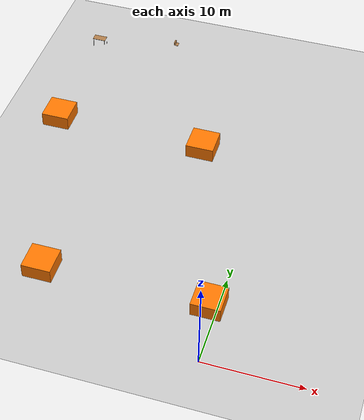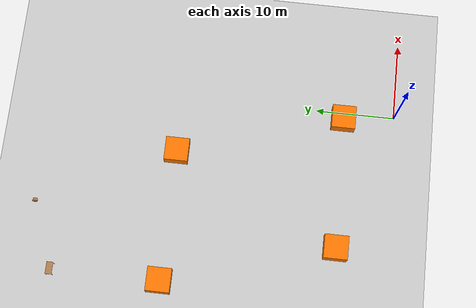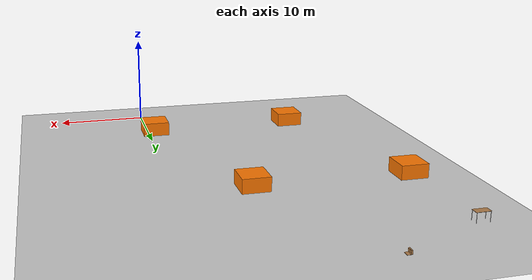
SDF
<sdf version="1.7">
 <world name="default">
  <light name="sun" type="directional">
   <pose>0 0 10 0 -0 0</pose>
   <diffuse>0.8 0.8 0.8 1</diffuse>
   <specular>0.2 0.2 0.2 1</specular>
   <attenuation>
    <range>1000</range>
    <constant>0.9</constant>
    <linear>0.01</linear>
    <quadratic>0.001</quadratic>
   </attenuation>
   <direction>-0.5 0.1 -0.9</direction>
   <spot><inner_angle>0</inner_angle><outer_angle>0</outer_angle><falloff>0</falloff></spot>
  </light>
  <model name="ground_plane">
   <static>1</static>
   <link name="link">
    <collision name="collision">
     <geometry><plane><normal>0 0 1</normal><size>100 100</size></plane></geometry>
     <surface><friction><ode><mu>100</mu><mu2>50</mu2></ode></friction></surface>
    </collision>
    <visual name="visual">
     <cast_shadows>0</cast_shadows>
     <geometry><plane><normal>0 0 1</normal><size>100 100</size></plane></geometry>
     <material>
      <script><uri>file://media/materials/scripts/gazebo.material</uri><name>Gazebo/Grey</name></script>
     </material>
    </visual>
   </link>
  </model>
  <gravity>0 0 -9.8</gravity>
  <magnetic_field>6e-06 2.3e-05 -4.2e-05</magnetic_field>
  <atmosphere type="adiabatic"/>
  <physics type="ode">
   <max_step_size>0.001</max_step_size>
   <real_time_factor>1</real_time_factor>
   <real_time_update_rate>1000</real_time_update_rate>
  </physics>
  <scene><ambient>0.4 0.4 0.4 1</ambient><background>0.7 0.7 0.7 1</background><shadows>1</shadows></scene>
  <audio><device>default</device></audio>
  <spherical_coordinates>
   <surface_model>EARTH_WGS84</surface_model>
   <latitude_deg>0</latitude_deg>
   <longitude_deg>0</longitude_deg>
   <elevation>0</elevation>
   <heading_deg>0</heading_deg>
  </spherical_coordinates>
  <model name="table">
   <static>1</static>
   <link name="link">
    <collision name="surface">
     <pose>0 0 1 0 -0 0</pose>
     <geometry><box><size>1.5 0.8 0.03</size></box></geometry>
     <surface><friction><ode><mu>0.6</mu><mu2>0.6</mu2></ode></friction></surface>
    </collision>
    <visual name="visual1">
     <pose>0 0 1 0 -0 0</pose>
     <geometry><box><size>1.5 0.8 0.03</size></box></geometry>
     <material>
      <script><uri>file://media/materials/scripts/gazebo.material</uri><name>Gazebo/Wood</name></script>
     </material>
    </visual>
    <collision name="front_left_leg">
     <pose>0.68 0.38 0.5 0 -0 0</pose>
     <geometry><cylinder><radius>0.02</radius><length>1</length></cylinder></geometry>
    </collision>
    <visual name="front_left_leg">
     <pose>0.68 0.38 0.5 0 -0 0</pose>
     <geometry><cylinder><radius>0.02</radius><length>1</length></cylinder></geometry>
     <material>
      <script><uri>file://media/materials/scripts/gazebo.material</uri><name>Gazebo/Grey</name></script>
     </material>
    </visual>
    <collision name="front_right_leg">
     <pose>0.68 -0.38 0.5 0 -0 0</pose>
     <geometry><cylinder><radius>0.02</radius><length>1</length></cylinder></geometry>
    </collision>
    <visual name="front_right_leg">
     <pose>0.68 -0.38 0.5 0 -0 0</pose>
     <geometry><cylinder><radius>0.02</radius><length>1</length></cylinder></geometry>
     <material>
      <script><uri>file://media/materials/scripts/gazebo.material</uri><name>Gazebo/Grey</name></script>
     </material>
    </visual>
    <collision name="back_right_leg">
     <pose>-0.68 -0.38 0.5 0 -0 0</pose>
     <geometry><cylinder><radius>0.02</radius><length>1</length></cylinder></geometry>
    </collision>
    <visual name="back_right_leg">
     <pose>-0.68 -0.38 0.5 0 -0 0</pose>
     <geometry><cylinder><radius>0.02</radius><length>1</length></cylinder></geometry>
     <material>
      <script><uri>file://media/materials/scripts/gazebo.material</uri><name>Gazebo/Grey</name></script>
     </material>
    </visual>
    <collision name="back_left_leg">
     <pose>-0.68 0.38 0.5 0 -0 0</pose>
     <geometry><cylinder><radius>0.02</radius><length>1</length></cylinder></geometry>
    </collision>
    <visual name="back_left_leg">
     <pose>-0.68 0.38 0.5 0 -0 0</pose>
     <geometry><cylinder><radius>0.02</radius><length>1</length></cylinder></geometry>
     <material>
      <script><uri>file://media/materials/scripts/gazebo.material</uri><name>Gazebo/Grey</name></script>
     </material>
    </visual>
   </link>
   <pose>-24.2186 40.8812 0.473539 0 -0 0</pose>
  </model>
  <model name="wooden_case">
   <link name="base">
    <pose>0 0 0.024 0 -0 0</pose>
    <inertial>
     <pose>-0.022184 0 0.171592 0 -0 0</pose>
     <mass>3.96264</mass>
     <inertia>
      <ixx>0.213536</ixx>
      <ixy>0</ixy>
      <ixz>0.000779377</ixz>
      <iyy>0.0708943</iyy>
      <iyz>0</iyz>
      <izz>0.154604</izz>
     </inertia>
    </inertial>
    <collision name="collision_back">
     <pose>-0.053975 0 0.1778 0 -0 0</pose>
     <geometry><box><size>0.01905 0.5461 0.3175</size></box></geometry>
     <surface>
      <contact>
       <poissons_ratio>0.347</poissons_ratio>
       <elastic_modulus>8.8e+09</elastic_modulus>
       <ode><kp>100000</kp><kd>100</kd><max_vel>100</max_vel><min_depth>0.001</min_depth></ode>
      </contact>
      <friction>
       <torsional>
        <coefficient>1</coefficient>
        <use_patch_radius>0</use_patch_radius>
        <surface_radius>0.01</surface_radius>
       </torsional>
      </friction>
     </surface>
    </collision>
    <visual name="visual_back">
     <pose>-0.053975 0 0.1778 0 -0 0</pose>
     <geometry><box><size>0.01905 0.5461 0.3175</size></box></geometry>
     <material>
      <script><uri>file://media/materials/scripts/gazebo.material</uri><name>Gazebo/Wood</name></script>
     </material>
    </visual>
    <collision name="collision_bottom">
     <pose>0 0 0.009525 0 -0 0</pose>
     <geometry><box><size>0.127 0.5842 0.01905</size></box></geometry>
     <surface>
      <contact>
       <poissons_ratio>0.347</poissons_ratio>
       <elastic_modulus>8.8e+09</elastic_modulus>
       <ode><kp>100000</kp><kd>100</kd><max_vel>100</max_vel><min_depth>0.001</min_depth></ode>
      </contact>
      <friction>
       <torsional>
        <coefficient>1</coefficient>
        <use_patch_radius>0</use_patch_radius>
        <surface_radius>0.01</surface_radius>
       </torsional>
      </friction>
     </surface>
    </collision>
    <visual name="visual_bottom">
     <pose>0 0 0.009525 0 -0 0</pose>
     <geometry><box><size>0.127 0.5842 0.01905</size></box></geometry>
     <material>
      <script><uri>file://media/materials/scripts/gazebo.material</uri><name>Gazebo/Wood</name></script>
     </material>
    </visual>
    <collision name="collision_top">
     <pose>0 0 0.346075 0 -0 0</pose>
     <geometry><box><size>0.127 0.5842 0.01905</size></box></geometry>
     <surface>
      <contact>
       <poissons_ratio>0.347</poissons_ratio>
       <elastic_modulus>8.8e+09</elastic_modulus>
       <ode><kp>100000</kp><kd>100</kd><max_vel>100</max_vel><min_depth>0.001</min_depth></ode>
      </contact>
      <friction>
       <torsional>
        <coefficient>1</coefficient>
        <use_patch_radius>0</use_patch_radius>
        <surface_radius>0.01</surface_radius>
       </torsional>
      </friction>
     </surface>
    </collision>
    <visual name="visual_top">
     <pose>0 0 0.346075 0 -0 0</pose>
     <geometry><box><size>0.127 0.5842 0.01905</size></box></geometry>
     <material>
      <script><uri>file://media/materials/scripts/gazebo.material</uri><name>Gazebo/Wood</name></script>
     </material>
    </visual>
    <collision name="collision_left">
     <pose>0 -0.282575 0.1778 0 -0 0</pose>
     <geometry><box><size>0.127 0.01905 0.3175</size></box></geometry>
     <surface>
      <contact>
       <poissons_ratio>0.347</poissons_ratio>
       <elastic_modulus>8.8e+09</elastic_modulus>
       <ode><kp>100000</kp><kd>100</kd><max_vel>100</max_vel><min_depth>0.001</min_depth></ode>
      </contact>
      <friction>
       <torsional>
        <coefficient>1</coefficient>
        <use_patch_radius>0</use_patch_radius>
        <surface_radius>0.01</surface_radius>
       </torsional>
      </friction>
     </surface>
    </collision>
    <visual name="visual_left">
     <pose>0 -0.282575 0.1778 0 -0 0</pose>
     <geometry><box><size>0.127 0.01905 0.3175</size></box></geometry>
     <material>
      <script><uri>file://media/materials/scripts/gazebo.material</uri><name>Gazebo/Wood</name></script>
     </material>
    </visual>
    <collision name="collision_right">
     <pose>0 0.282575 0.1778 0 -0 0</pose>
     <geometry><box><size>0.127 0.01905 0.3175</size></box></geometry>
     <surface>
      <contact>
       <poissons_ratio>0.347</poissons_ratio>
       <elastic_modulus>8.8e+09</elastic_modulus>
       <ode><kp>100000</kp><kd>100</kd><max_vel>100</max_vel><min_depth>0.001</min_depth></ode>
      </contact>
      <friction>
       <torsional>
        <coefficient>1</coefficient>
        <use_patch_radius>0</use_patch_radius>
        <surface_radius>0.01</surface_radius>
       </torsional>
      </friction>
     </surface>
    </collision>
    <visual name="visual_right">
     <pose>0 0.282575 0.1778 0 -0 0</pose>
     <geometry><box><size>0.127 0.01905 0.3175</size></box></geometry>
     <material>
      <script><uri>file://media/materials/scripts/gazebo.material</uri><name>Gazebo/Wood</name></script>
     </material>
    </visual>
    <collision name="collision_block_left">
     <pose>0.0095 -0.2151 -0.012 0 -0 0</pose>
     <geometry><box><size>0.108 0.05 0.024</size></box></geometry>
     <surface>
      <contact>
       <poissons_ratio>0.347</poissons_ratio>
       <elastic_modulus>8.8e+09</elastic_modulus>
       <ode><kp>100000</kp><kd>100</kd><max_vel>100</max_vel><min_depth>0.001</min_depth></ode>
      </contact>
      <friction>
       <torsional>
        <coefficient>1</coefficient>
        <use_patch_radius>0</use_patch_radius>
        <surface_radius>0.01</surface_radius>
       </torsional>
      </friction>
     </surface>
    </collision>
    <visual name="visual_block_left">
     <pose>0.0095 -0.2151 -0.012 0 -0 0</pose>
     <geometry><box><size>0.108 0.05 0.024</size></box></geometry>
     <material>
      <script><uri>file://media/materials/scripts/gazebo.material</uri><name>Gazebo/Wood</name></script>
     </material>
    </visual>
    <collision name="collision_block_right">
     <pose>0.0095 0.2151 -0.012 0 -0 0</pose>
     <geometry><box><size>0.108 0.05 0.024</size></box></geometry>
     <surface>
      <contact>
       <poissons_ratio>0.347</poissons_ratio>
       <elastic_modulus>8.8e+09</elastic_modulus>
       <ode><kp>100000</kp><kd>100</kd><max_vel>100</max_vel><min_depth>0.001</min_depth></ode>
      </contact>
      <friction>
       <torsional>
        <coefficient>1</coefficient>
        <use_patch_radius>0</use_patch_radius>
        <surface_radius>0.01</surface_radius>
       </torsional>
      </friction>
     </surface>
    </collision>
    <visual name="visual_block_right">
     <pose>0.0095 0.2151 -0.012 0 -0 0</pose>
     <geometry><box><size>0.108 0.05 0.024</size></box></geometry>
     <material>
      <script><uri>file://media/materials/scripts/gazebo.material</uri><name>Gazebo/Wood</name></script>
     </material>
    </visual>
   </link>
   <link name="lid">
    <pose>0.243775 0 0.009525 0 -0 0</pose>
    <inertial>
     <mass>1.97874</mass>
     <inertia>
      <ixx>0.0563367</ixx>
      <ixy>0</ixy>
      <ixz>0</ixz>
      <iyy>0.020911</iyy>
      <iyz>0</iyz>
      <izz>0.0771281</izz>
     </inertia>
    </inertial>
    <collision name="collision">
     <geometry><box><size>0.3556 0.5842 0.01905</size></box></geometry>
     <surface>
      <contact>
       <poissons_ratio>0.347</poissons_ratio>
       <elastic_modulus>8.8e+09</elastic_modulus>
       <ode><kp>100000</kp><kd>100</kd><max_vel>100</max_vel><min_depth>0.001</min_depth></ode>
      </contact>
      <friction>
       <torsional>
        <coefficient>1</coefficient>
        <use_patch_radius>0</use_patch_radius>
        <surface_radius>0.01</surface_radius>
       </torsional>
      </friction>
     </surface>
    </collision>
    <visual name="visual">
     <geometry><box><size>0.3556 0.5842 0.01905</size></box></geometry>
     <material>
      <script><uri>file://media/materials/scripts/gazebo.material</uri><name>Gazebo/Wood</name></script>
     </material>
    </visual>
    <visual name="tee_nut_1">
     <pose>0.122 -0.216 0 0 -0 0</pose>
     <geometry><cylinder><radius>0.00635</radius><length>0.0192405</length></cylinder></geometry>
     <material>
      <script><uri>file://media/materials/scripts/gazebo.material</uri><name>Gazebo/Grey</name></script>
     </material>
    </visual>
    <visual name="tee_nut_2">
     <pose>0.122 -0.088 0 0 -0 0</pose>
     <geometry><cylinder><radius>0.00635</radius><length>0.0192405</length></cylinder></geometry>
     <material>
      <script><uri>file://media/materials/scripts/gazebo.material</uri><name>Gazebo/Grey</name></script>
     </material>
    </visual>
    <visual name="tee_nut_3">
     <pose>0.122 0.088 0 0 -0 0</pose>
     <geometry><cylinder><radius>0.00635</radius><length>0.0192405</length></cylinder></geometry>
     <material>
      <script><uri>file://media/materials/scripts/gazebo.material</uri><name>Gazebo/Grey</name></script>
     </material>
    </visual>
    <visual name="tee_nut_4">
     <pose>0.122 0.216 0 0 -0 0</pose>
     <geometry><cylinder><radius>0.00635</radius><length>0.0192405</length></cylinder></geometry>
     <material>
      <script><uri>file://media/materials/scripts/gazebo.material</uri><name>Gazebo/Grey</name></script>
     </material>
    </visual>
   </link>
   <joint name="lid_hinge" type="revolute">
    <pose>-0.1778 0 0.01905 0 -0 0</pose>
    <parent>base</parent>
    <child>lid</child>
    <axis>
     <xyz>0 1 0</xyz>
     <limit><upper>0.523599</upper><lower>-1.5708</lower></limit>
     <dynamics><spring_reference>0</spring_reference><spring_stiffness>0</spring_stiffness></dynamics>
    </axis>
   </joint>
   <pose>-15.8267 44.2683 -0.001057 0 -0.000428 0</pose>
  </model>
  <model name="factory_machines">
   <link name="link_0">
    <inertial>
     <mass>1</mass>
     <inertia>
      <ixx>0.166667</ixx>
      <ixy>0</ixy>
      <ixz>0</ixz>
      <iyy>0.166667</iyy>
      <iyz>0</iyz>
      <izz>0.166667</izz>
     </inertia>
    </inertial>
    <pose>5.10465 10.3846 0 0 -0 0</pose>
    <visual name="visual">
     <geometry><box><size>3 3 2</size></box></geometry>
     <material>
      <lighting>1</lighting>
      <script><uri>file://media/materials/scripts/gazebo.material</uri><name>Gazebo/Grey</name></script>
      <shader type="pixel"><normal_map>__default__</normal_map></shader>
      <ambient>1 0.471 0 1</ambient>
      <diffuse>0.7 0.7 0.7 1</diffuse>
      <specular>0.01 0.01 0.01 1</specular>
      <emissive>0 0 0 1</emissive>
     </material>
    </visual>
    <collision name="collision">
     <geometry><box><size>3 3 2</size></box></geometry>
     <surface>
      <friction>
       <ode><mu>1</mu><mu2>1</mu2><fdir1>0 0 0</fdir1><slip1>0</slip1><slip2>0</slip2></ode>
       <torsional>
        <coefficient>1</coefficient>
        <patch_radius>0</patch_radius>
        <surface_radius>0</surface_radius>
        <use_patch_radius>1</use_patch_radius>
        <ode><slip>0</slip></ode>
       </torsional>
      </friction>
      <bounce><restitution_coefficient>0</restitution_coefficient><threshold>1e+06</threshold></bounce>
      <contact>
       <collide_without_contact>0</collide_without_contact>
       <collide_without_contact_bitmask>1</collide_without_contact_bitmask>
       <collide_bitmask>1</collide_bitmask>
       <ode>
        <soft_cfm>0</soft_cfm>
        <soft_erp>0.2</soft_erp>
        <kp>1e+13</kp>
        <kd>1</kd>
        <max_vel>0.01</max_vel>
        <min_depth>0</min_depth>
       </ode>
       <bullet>
        <split_impulse>1</split_impulse>
        <split_impulse_penetration_threshold>-0.01</split_impulse_penetration_threshold>
        <soft_cfm>0</soft_cfm>
        <soft_erp>0.2</soft_erp>
        <kp>1e+13</kp>
        <kd>1</kd>
       </bullet>
      </contact>
     </surface>
    </collision>
   </link>
   <link name="link_0_clone">
    <inertial>
     <mass>1</mass>
     <inertia>
      <ixx>0.166667</ixx>
      <ixy>0</ixy>
      <ixz>0</ixz>
      <iyy>0.166667</iyy>
      <iyz>0</iyz>
      <izz>0.166667</izz>
     </inertia>
    </inertial>
    <pose>11.7 -10.343 0 0 -0 0</pose>
    <visual name="visual">
     <geometry><box><size>3 3 2</size></box></geometry>
     <material>
      <lighting>1</lighting>
      <script><uri>file://media/materials/scripts/gazebo.material</uri><name>Gazebo/Grey</name></script>
      <shader type="pixel"><normal_map>__default__</normal_map></shader>
      <ambient>1 0.471 0 1</ambient>
      <diffuse>0.7 0.7 0.7 1</diffuse>
      <specular>0.01 0.01 0.01 1</specular>
      <emissive>0 0 0 1</emissive>
     </material>
    </visual>
    <collision name="collision">
     <geometry><box><size>3 3 2</size></box></geometry>
     <surface>
      <friction>
       <ode><mu>1</mu><mu2>1</mu2><fdir1>0 0 0</fdir1><slip1>0</slip1><slip2>0</slip2></ode>
       <torsional>
        <coefficient>1</coefficient>
        <patch_radius>0</patch_radius>
        <surface_radius>0</surface_radius>
        <use_patch_radius>1</use_patch_radius>
        <ode><slip>0</slip></ode>
       </torsional>
      </friction>
      <bounce><restitution_coefficient>0</restitution_coefficient><threshold>1e+06</threshold></bounce>
      <contact>
       <collide_without_contact>0</collide_without_contact>
       <collide_without_contact_bitmask>1</collide_without_contact_bitmask>
       <collide_bitmask>1</collide_bitmask>
       <ode>
        <soft_cfm>0</soft_cfm>
        <soft_erp>0.2</soft_erp>
        <kp>1e+13</kp>
        <kd>1</kd>
        <max_vel>0.01</max_vel>
        <min_depth>0</min_depth>
       </ode>
       <bullet>
        <split_impulse>1</split_impulse>
        <split_impulse_penetration_threshold>-0.01</split_impulse_penetration_threshold>
        <soft_cfm>0</soft_cfm>
        <soft_erp>0.2</soft_erp>
        <kp>1e+13</kp>
        <kd>1</kd>
       </bullet>
      </contact>
     </surface>
    </collision>
   </link>
   <link name="link_0_clone_0">
    <inertial>
     <mass>1</mass>
     <inertia>
      <ixx>0.166667</ixx>
      <ixy>0</ixy>
      <ixz>0</ixz>
      <iyy>0.166667</iyy>
      <iyz>0</iyz>
      <izz>0.166667</izz>
     </inertia>
    </inertial>
    <pose>-5.21258 -10.6315 0 0 -0 0</pose>
    <visual name="visual">
     <geometry><box><size>3 3 2</size></box></geometry>
     <material>
      <lighting>1</lighting>
      <script><uri>file://media/materials/scripts/gazebo.material</uri><name>Gazebo/Grey</name></script>
      <shader type="pixel"><normal_map>__default__</normal_map></shader>
      <ambient>1 0.471 0 1</ambient>
      <diffuse>0.7 0.7 0.7 1</diffuse>
      <specular>0.01 0.01 0.01 1</specular>
      <emissive>0 0 0 1</emissive>
     </material>
    </visual>
    <collision name="collision">
     <geometry><box><size>3 3 2</size></box></geometry>
     <surface>
      <friction>
       <ode><mu>1</mu><mu2>1</mu2><fdir1>0 0 0</fdir1><slip1>0</slip1><slip2>0</slip2></ode>
       <torsional>
        <coefficient>1</coefficient>
        <patch_radius>0</patch_radius>
        <surface_radius>0</surface_radius>
        <use_patch_radius>1</use_patch_radius>
        <ode><slip>0</slip></ode>
       </torsional>
      </friction>
      <bounce><restitution_coefficient>0</restitution_coefficient><threshold>1e+06</threshold></bounce>
      <contact>
       <collide_without_contact>0</collide_without_contact>
       <collide_without_contact_bitmask>1</collide_without_contact_bitmask>
       <collide_bitmask>1</collide_bitmask>
       <ode>
        <soft_cfm>0</soft_cfm>
        <soft_erp>0.2</soft_erp>
        <kp>1e+13</kp>
        <kd>1</kd>
        <max_vel>0.01</max_vel>
        <min_depth>0</min_depth>
       </ode>
       <bullet>
        <split_impulse>1</split_impulse>
        <split_impulse_penetration_threshold>-0.01</split_impulse_penetration_threshold>
        <soft_cfm>0</soft_cfm>
        <soft_erp>0.2</soft_erp>
        <kp>1e+13</kp>
        <kd>1</kd>
       </bullet>
      </contact>
     </surface>
    </collision>
   </link>
   <link name="link_0_clone_1">
    <inertial>
     <mass>1</mass>
     <inertia>
      <ixx>0.166667</ixx>
      <ixy>0</ixy>
      <ixz>0</ixz>
      <iyy>0.166667</iyy>
      <iyz>0</iyz>
      <izz>0.166667</izz>
     </inertia>
    </inertial>
    <pose>-11.592 10.59 0 0 -0 0</pose>
    <visual name="visual">
     <geometry><box><size>3 3 2</size></box></geometry>
     <material>
      <lighting>1</lighting>
      <script><uri>file://media/materials/scripts/gazebo.material</uri><name>Gazebo/Grey</name></script>
      <shader type="pixel"><normal_map>__default__</normal_map></shader>
      <ambient>1 0.471 0 1</ambient>
      <diffuse>0.7 0.7 0.7 1</diffuse>
      <specular>0.01 0.01 0.01 1</specular>
      <emissive>0 0 0 1</emissive>
     </material>
    </visual>
    <collision name="collision">
     <geometry><box><size>3 3 2</size></box></geometry>
     <surface>
      <friction>
       <ode><mu>1</mu><mu2>1</mu2><fdir1>0 0 0</fdir1><slip1>0</slip1><slip2>0</slip2></ode>
       <torsional>
        <coefficient>1</coefficient>
        <patch_radius>0</patch_radius>
        <surface_radius>0</surface_radius>
        <use_patch_radius>1</use_patch_radius>
        <ode><slip>0</slip></ode>
       </torsional>
      </friction>
      <bounce><restitution_coefficient>0</restitution_coefficient><threshold>1e+06</threshold></bounce>
      <contact>
       <collide_without_contact>0</collide_without_contact>
       <collide_without_contact_bitmask>1</collide_without_contact_bitmask>
       <collide_bitmask>1</collide_bitmask>
       <ode>
        <soft_cfm>0</soft_cfm>
        <soft_erp>0.2</soft_erp>
        <kp>1e+13</kp>
        <kd>1</kd>
        <max_vel>0.01</max_vel>
        <min_depth>0</min_depth>
       </ode>
       <bullet>
        <split_impulse>1</split_impulse>
        <split_impulse_penetration_threshold>-0.01</split_impulse_penetration_threshold>
        <soft_cfm>0</soft_cfm>
        <soft_erp>0.2</soft_erp>
        <kp>1e+13</kp>
        <kd>1</kd>
       </bullet>
      </contact>
     </surface>
    </collision>
   </link>
   <static>0</static>
   <pose>-12.5576 16.8632 0.5 0 -0 0</pose>
  </model>
 </world>
</sdf>
